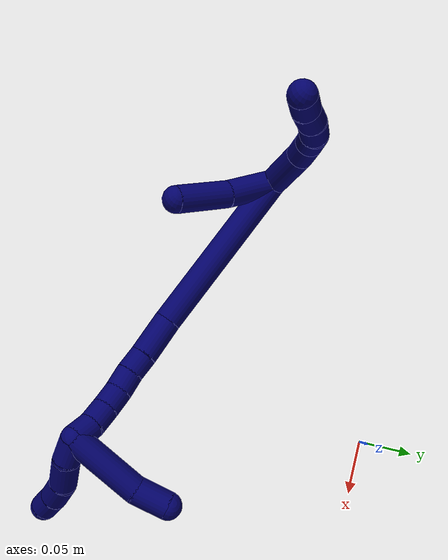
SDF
<sdf version="1.7">
 <world name="default">
  <model name="7">
   <static>0</static>
   <link name="7">
    <collision name="collision-cylinder-e_1_2_8">
     <pose>0.000186 0.000739 0.024261 -0.030449 0.007679 -0.000117</pose>
     <geometry><cylinder><radius>0.0125</radius><length>0.048547</length></cylinder></geometry>
     <surface>
      <friction><ode><mu>1.16</mu><mu2>1.16</mu2><slip1>0</slip1><slip2>0</slip2></ode></friction>
      <contact><ode><kp>1e+06</kp><kd>1</kd><max_vel>0</max_vel><min_depth>0.001</min_depth></ode></contact>
     </surface>
    </collision>
    <visual name="visual-cylinder-e_1_2_8">
     <pose>0.000186 0.000739 0.024261 -0.030449 0.007679 -0.000117</pose>
     <geometry><cylinder><radius>0.0125</radius><length>0.048547</length></cylinder></geometry>
     <material><ambient>0.003922 0 0.403922 1</ambient></material>
    </visual>
    <collision name="collision-cylinder-e_2_8_9">
     <pose>0.000959 0.000326 0.059064 0.10889 0.055213 0.00301</pose>
     <geometry><cylinder><radius>0.0125</radius><length>0.02124</length></cylinder></geometry>
     <surface>
      <friction><ode><mu>1.16</mu><mu2>1.16</mu2><slip1>0</slip1><slip2>0</slip2></ode></friction>
      <contact><ode><kp>1e+06</kp><kd>1</kd><max_vel>0</max_vel><min_depth>0.001</min_depth></ode></contact>
     </surface>
    </collision>
    <visual name="visual-cylinder-e_2_8_9">
     <pose>0.000959 0.000326 0.059064 0.10889 0.055213 0.00301</pose>
     <geometry><cylinder><radius>0.0125</radius><length>0.02124</length></cylinder></geometry>
     <material><ambient>0.003922 0 0.403922 1</ambient></material>
    </visual>
    <collision name="collision-cylinder-e_3_9_10">
     <pose>0.004624 -0.003501 0.078843 0.281808 0.309879 0.044302</pose>
     <geometry><cylinder><radius>0.0125</radius><length>0.020197</length></cylinder></geometry>
     <surface>
      <friction><ode><mu>1.16</mu><mu2>1.16</mu2><slip1>0</slip1><slip2>0</slip2></ode></friction>
      <contact><ode><kp>1e+06</kp><kd>1</kd><max_vel>0</max_vel><min_depth>0.001</min_depth></ode></contact>
     </surface>
    </collision>
    <visual name="visual-cylinder-e_3_9_10">
     <pose>0.004624 -0.003501 0.078843 0.281808 0.309879 0.044302</pose>
     <geometry><cylinder><radius>0.0125</radius><length>0.020197</length></cylinder></geometry>
     <material><ambient>0.003922 0 0.403922 1</ambient></material>
    </visual>
    <collision name="collision-cylinder-e_4_10_11">
     <pose>0.009449 -0.011802 0.096169 0.607816 0.175279 0.055099</pose>
     <geometry><cylinder><radius>0.0125</radius><length>0.020011</length></cylinder></geometry>
     <surface>
      <friction><ode><mu>1.16</mu><mu2>1.16</mu2><slip1>0</slip1><slip2>0</slip2></ode></friction>
      <contact><ode><kp>1e+06</kp><kd>1</kd><max_vel>0</max_vel><min_depth>0.001</min_depth></ode></contact>
     </surface>
    </collision>
    <visual name="visual-cylinder-e_4_10_11">
     <pose>0.009449 -0.011802 0.096169 0.607816 0.175279 0.055099</pose>
     <geometry><cylinder><radius>0.0125</radius><length>0.020011</length></cylinder></geometry>
     <material><ambient>0.003922 0 0.403922 1</ambient></material>
    </visual>
    <collision name="collision-cylinder-e_5_11_12">
     <pose>0.012944 -0.024328 0.111281 0.776402 0.17596 0.072114</pose>
     <geometry><cylinder><radius>0.0125</radius><length>0.020001</length></cylinder></geometry>
     <surface>
      <friction><ode><mu>1.16</mu><mu2>1.16</mu2><slip1>0</slip1><slip2>0</slip2></ode></friction>
      <contact><ode><kp>1e+06</kp><kd>1</kd><max_vel>0</max_vel><min_depth>0.001</min_depth></ode></contact>
     </surface>
    </collision>
    <visual name="visual-cylinder-e_5_11_12">
     <pose>0.012944 -0.024328 0.111281 0.776402 0.17596 0.072114</pose>
     <geometry><cylinder><radius>0.0125</radius><length>0.020001</length></cylinder></geometry>
     <material><ambient>0.003922 0 0.403922 1</ambient></material>
    </visual>
    <collision name="collision-cylinder-e_6_12_6">
     <pose>0.016273 -0.037184 0.126184 0.647387 0.158459 0.053261</pose>
     <geometry><cylinder><radius>0.0125</radius><length>0.020004</length></cylinder></geometry>
     <surface>
      <friction><ode><mu>1.16</mu><mu2>1.16</mu2><slip1>0</slip1><slip2>0</slip2></ode></friction>
      <contact><ode><kp>1e+06</kp><kd>1</kd><max_vel>0</max_vel><min_depth>0.001</min_depth></ode></contact>
     </surface>
    </collision>
    <visual name="visual-cylinder-e_6_12_6">
     <pose>0.016273 -0.037184 0.126184 0.647387 0.158459 0.053261</pose>
     <geometry><cylinder><radius>0.0125</radius><length>0.020004</length></cylinder></geometry>
     <material><ambient>0.003922 0 0.403922 1</ambient></material>
    </visual>
    <collision name="collision-cylinder-e_1_2_13">
     <pose>0.011993 -0.020414 -0.003411 1.73634 0.525185 0.614749</pose>
     <geometry><cylinder><radius>0.0125</radius><length>0.047842</length></cylinder></geometry>
     <surface>
      <friction><ode><mu>1.16</mu><mu2>1.16</mu2><slip1>0</slip1><slip2>0</slip2></ode></friction>
      <contact><ode><kp>1e+06</kp><kd>1</kd><max_vel>0</max_vel><min_depth>0.001</min_depth></ode></contact>
     </surface>
    </collision>
    <visual name="visual-cylinder-e_1_2_13">
     <pose>0.011993 -0.020414 -0.003411 1.73634 0.525185 0.614749</pose>
     <geometry><cylinder><radius>0.0125</radius><length>0.047842</length></cylinder></geometry>
     <material><ambient>0.003922 0 0.403922 1</ambient></material>
    </visual>
    <collision name="collision-cylinder-e_2_13_5">
     <pose>0.035394 -0.064272 -0.007427 1.59663 0.452747 0.46418</pose>
     <geometry><cylinder><radius>0.0125</radius><length>0.052158</length></cylinder></geometry>
     <surface>
      <friction><ode><mu>1.16</mu><mu2>1.16</mu2><slip1>0</slip1><slip2>0</slip2></ode></friction>
      <contact><ode><kp>1e+06</kp><kd>1</kd><max_vel>0</max_vel><min_depth>0.001</min_depth></ode></contact>
     </surface>
    </collision>
    <visual name="visual-cylinder-e_2_13_5">
     <pose>0.035394 -0.064272 -0.007427 1.59663 0.452747 0.46418</pose>
     <geometry><cylinder><radius>0.0125</radius><length>0.052158</length></cylinder></geometry>
     <material><ambient>0.003922 0 0.403922 1</ambient></material>
    </visual>
    <collision name="collision-cylinder-e_1_2_14">
     <pose>0.063431 -0.028384 -0.040607 2.53153 0.907708 1.99527</pose>
     <geometry><cylinder><radius>0.0125</radius><length>0.160974</length></cylinder></geometry>
     <surface>
      <friction><ode><mu>1.16</mu><mu2>1.16</mu2><slip1>0</slip1><slip2>0</slip2></ode></friction>
      <contact><ode><kp>1e+06</kp><kd>1</kd><max_vel>0</max_vel><min_depth>0.001</min_depth></ode></contact>
     </surface>
    </collision>
    <visual name="visual-cylinder-e_1_2_14">
     <pose>0.063431 -0.028384 -0.040607 2.53153 0.907708 1.99527</pose>
     <geometry><cylinder><radius>0.0125</radius><length>0.160974</length></cylinder></geometry>
     <material><ambient>0.003922 0 0.403922 1</ambient></material>
    </visual>
    <collision name="collision-cylinder-e_2_14_15">
     <pose>0.143877 -0.063845 -0.087376 2.28731 1.06684 1.82825</pose>
     <geometry><cylinder><radius>0.0125</radius><length>0.038861</length></cylinder></geometry>
     <surface>
      <friction><ode><mu>1.16</mu><mu2>1.16</mu2><slip1>0</slip1><slip2>0</slip2></ode></friction>
      <contact><ode><kp>1e+06</kp><kd>1</kd><max_vel>0</max_vel><min_depth>0.001</min_depth></ode></contact>
     </surface>
    </collision>
    <visual name="visual-cylinder-e_2_14_15">
     <pose>0.143877 -0.063845 -0.087376 2.28731 1.06684 1.82825</pose>
     <geometry><cylinder><radius>0.0125</radius><length>0.038861</length></cylinder></geometry>
     <material><ambient>0.003922 0 0.403922 1</ambient></material>
    </visual>
    <collision name="collision-cylinder-e_3_15_16">
     <pose>0.169411 -0.075047 -0.096811 2.2412 1.01705 1.71302</pose>
     <geometry><cylinder><radius>0.0125</radius><length>0.02003</length></cylinder></geometry>
     <surface>
      <friction><ode><mu>1.16</mu><mu2>1.16</mu2><slip1>0</slip1><slip2>0</slip2></ode></friction>
      <contact><ode><kp>1e+06</kp><kd>1</kd><max_vel>0</max_vel><min_depth>0.001</min_depth></ode></contact>
     </surface>
    </collision>
    <visual name="visual-cylinder-e_3_15_16">
     <pose>0.169411 -0.075047 -0.096811 2.2412 1.01705 1.71302</pose>
     <geometry><cylinder><radius>0.0125</radius><length>0.02003</length></cylinder></geometry>
     <material><ambient>0.003922 0 0.403922 1</ambient></material>
    </visual>
    <collision name="collision-cylinder-e_4_16_17">
     <pose>0.187135 -0.082538 -0.102279 2.14908 1.15924 1.75948</pose>
     <geometry><cylinder><radius>0.0125</radius><length>0.020088</length></cylinder></geometry>
     <surface>
      <friction><ode><mu>1.16</mu><mu2>1.16</mu2><slip1>0</slip1><slip2>0</slip2></ode></friction>
      <contact><ode><kp>1e+06</kp><kd>1</kd><max_vel>0</max_vel><min_depth>0.001</min_depth></ode></contact>
     </surface>
    </collision>
    <visual name="visual-cylinder-e_4_16_17">
     <pose>0.187135 -0.082538 -0.102279 2.14908 1.15924 1.75948</pose>
     <geometry><cylinder><radius>0.0125</radius><length>0.020088</length></cylinder></geometry>
     <material><ambient>0.003922 0 0.403922 1</ambient></material>
    </visual>
    <collision name="collision-cylinder-e_5_17_18">
     <pose>0.205333 -0.09023 -0.105309 1.76122 1.11517 1.29374</pose>
     <geometry><cylinder><radius>0.0125</radius><length>0.02003</length></cylinder></geometry>
     <surface>
      <friction><ode><mu>1.16</mu><mu2>1.16</mu2><slip1>0</slip1><slip2>0</slip2></ode></friction>
      <contact><ode><kp>1e+06</kp><kd>1</kd><max_vel>0</max_vel><min_depth>0.001</min_depth></ode></contact>
     </surface>
    </collision>
    <visual name="visual-cylinder-e_5_17_18">
     <pose>0.205333 -0.09023 -0.105309 1.76122 1.11517 1.29374</pose>
     <geometry><cylinder><radius>0.0125</radius><length>0.02003</length></cylinder></geometry>
     <material><ambient>0.003922 0 0.403922 1</ambient></material>
    </visual>
    <collision name="collision-cylinder-e_6_18_19">
     <pose>0.223165 -0.099246 -0.106226 1.58839 1.08305 1.09866</pose>
     <geometry><cylinder><radius>0.0125</radius><length>0.020011</length></cylinder></geometry>
     <surface>
      <friction><ode><mu>1.16</mu><mu2>1.16</mu2><slip1>0</slip1><slip2>0</slip2></ode></friction>
      <contact><ode><kp>1e+06</kp><kd>1</kd><max_vel>0</max_vel><min_depth>0.001</min_depth></ode></contact>
     </surface>
    </collision>
    <visual name="visual-cylinder-e_6_18_19">
     <pose>0.223165 -0.099246 -0.106226 1.58839 1.08305 1.09866</pose>
     <geometry><cylinder><radius>0.0125</radius><length>0.020011</length></cylinder></geometry>
     <material><ambient>0.003922 0 0.403922 1</ambient></material>
    </visual>
    <collision name="collision-cylinder-e_7_19_1">
     <pose>0.239661 -0.110349 -0.105771 1.48716 0.871676 0.809322</pose>
     <geometry><cylinder><radius>0.0125</radius><length>0.020006</length></cylinder></geometry>
     <surface>
      <friction><ode><mu>1.16</mu><mu2>1.16</mu2><slip1>0</slip1><slip2>0</slip2></ode></friction>
      <contact><ode><kp>1e+06</kp><kd>1</kd><max_vel>0</max_vel><min_depth>0.001</min_depth></ode></contact>
     </surface>
    </collision>
    <visual name="visual-cylinder-e_7_19_1">
     <pose>0.239661 -0.110349 -0.105771 1.48716 0.871676 0.809322</pose>
     <geometry><cylinder><radius>0.0125</radius><length>0.020006</length></cylinder></geometry>
     <material><ambient>0.003922 0 0.403922 1</ambient></material>
    </visual>
    <collision name="collision-cylinder-e_1_1_20">
     <pose>0.254674 -0.1165 -0.114906 -3.11437 0.650047 -3.06085</pose>
     <geometry><cylinder><radius>0.0125</radius><length>0.024312</length></cylinder></geometry>
     <surface>
      <friction><ode><mu>1.16</mu><mu2>1.16</mu2><slip1>0</slip1><slip2>0</slip2></ode></friction>
      <contact><ode><kp>1e+06</kp><kd>1</kd><max_vel>0</max_vel><min_depth>0.001</min_depth></ode></contact>
     </surface>
    </collision>
    <visual name="visual-cylinder-e_1_1_20">
     <pose>0.254674 -0.1165 -0.114906 -3.11437 0.650047 -3.06085</pose>
     <geometry><cylinder><radius>0.0125</radius><length>0.024312</length></cylinder></geometry>
     <material><ambient>0.003922 0 0.403922 1</ambient></material>
    </visual>
    <collision name="collision-cylinder-e_2_20_21">
     <pose>0.268914 -0.112991 -0.137767 -2.90028 0.469082 -2.20245</pose>
     <geometry><cylinder><radius>0.0125</radius><length>0.030452</length></cylinder></geometry>
     <surface>
      <friction><ode><mu>1.16</mu><mu2>1.16</mu2><slip1>0</slip1><slip2>0</slip2></ode></friction>
      <contact><ode><kp>1e+06</kp><kd>1</kd><max_vel>0</max_vel><min_depth>0.001</min_depth></ode></contact>
     </surface>
    </collision>
    <visual name="visual-cylinder-e_2_20_21">
     <pose>0.268914 -0.112991 -0.137767 -2.90028 0.469082 -2.20245</pose>
     <geometry><cylinder><radius>0.0125</radius><length>0.030452</length></cylinder></geometry>
     <material><ambient>0.003922 0 0.403922 1</ambient></material>
    </visual>
    <collision name="collision-cylinder-e_3_21_22">
     <pose>0.279764 -0.110192 -0.162632 3.10338 0.32724 2.91111</pose>
     <geometry><cylinder><radius>0.0125</radius><length>0.024682</length></cylinder></geometry>
     <surface>
      <friction><ode><mu>1.16</mu><mu2>1.16</mu2><slip1>0</slip1><slip2>0</slip2></ode></friction>
      <contact><ode><kp>1e+06</kp><kd>1</kd><max_vel>0</max_vel><min_depth>0.001</min_depth></ode></contact>
     </surface>
    </collision>
    <visual name="visual-cylinder-e_3_21_22">
     <pose>0.279764 -0.110192 -0.162632 3.10338 0.32724 2.91111</pose>
     <geometry><cylinder><radius>0.0125</radius><length>0.024682</length></cylinder></geometry>
     <material><ambient>0.003922 0 0.403922 1</ambient></material>
    </visual>
    <collision name="collision-cylinder-e_4_22_4">
     <pose>0.286703 -0.112262 -0.184013 2.97584 0.293419 2.11736</pose>
     <geometry><cylinder><radius>0.0125</radius><length>0.020554</length></cylinder></geometry>
     <surface>
      <friction><ode><mu>1.16</mu><mu2>1.16</mu2><slip1>0</slip1><slip2>0</slip2></ode></friction>
      <contact><ode><kp>1e+06</kp><kd>1</kd><max_vel>0</max_vel><min_depth>0.001</min_depth></ode></contact>
     </surface>
    </collision>
    <visual name="visual-cylinder-e_4_22_4">
     <pose>0.286703 -0.112262 -0.184013 2.97584 0.293419 2.11736</pose>
     <geometry><cylinder><radius>0.0125</radius><length>0.020554</length></cylinder></geometry>
     <material><ambient>0.003922 0 0.403922 1</ambient></material>
    </visual>
    <collision name="collision-cylinder-e_1_1_23">
     <pose>0.263703 -0.08656 -0.105292 -1.57276 0.497079 -0.498018</pose>
     <geometry><cylinder><radius>0.0125</radius><length>0.068725</length></cylinder></geometry>
     <surface>
      <friction><ode><mu>1.16</mu><mu2>1.16</mu2><slip1>0</slip1><slip2>0</slip2></ode></friction>
      <contact><ode><kp>1e+06</kp><kd>1</kd><max_vel>0</max_vel><min_depth>0.001</min_depth></ode></contact>
     </surface>
    </collision>
    <visual name="visual-cylinder-e_1_1_23">
     <pose>0.263703 -0.08656 -0.105292 -1.57276 0.497079 -0.498018</pose>
     <geometry><cylinder><radius>0.0125</radius><length>0.068725</length></cylinder></geometry>
     <material><ambient>0.003922 0 0.403922 1</ambient></material>
    </visual>
    <collision name="collision-cylinder-e_2_23_3">
     <pose>0.284923 -0.04179 -0.102351 -1.36762 0.314246 -0.256812</pose>
     <geometry><cylinder><radius>0.0125</radius><length>0.031275</length></cylinder></geometry>
     <surface>
      <friction><ode><mu>1.16</mu><mu2>1.16</mu2><slip1>0</slip1><slip2>0</slip2></ode></friction>
      <contact><ode><kp>1e+06</kp><kd>1</kd><max_vel>0</max_vel><min_depth>0.001</min_depth></ode></contact>
     </surface>
    </collision>
    <visual name="visual-cylinder-e_2_23_3">
     <pose>0.284923 -0.04179 -0.102351 -1.36762 0.314246 -0.256812</pose>
     <geometry><cylinder><radius>0.0125</radius><length>0.031275</length></cylinder></geometry>
     <material><ambient>0.003922 0 0.403922 1</ambient></material>
    </visual>
    <collision name="collision-sphere-3">
     <pose>0.289756 -0.027224 -0.09935 0 -0 0</pose>
     <geometry><sphere><radius>0.0125</radius></sphere></geometry>
     <surface>
      <friction><ode><mu>1.16</mu><mu2>1.16</mu2><slip1>0</slip1><slip2>0</slip2></ode></friction>
      <contact><ode><kp>1e+06</kp><kd>1</kd><max_vel>0</max_vel><min_depth>0.001</min_depth></ode></contact>
     </surface>
    </collision>
    <visual name="visual-sphere-3">
     <pose>0.289756 -0.027224 -0.09935 0 -0 0</pose>
     <geometry><sphere><radius>0.0125</radius></sphere></geometry>
     <material><ambient>0.003922 0 0.403922 1</ambient></material>
    </visual>
    <collision name="collision-sphere-23">
     <pose>0.280089 -0.056355 -0.105352 0 -0 0</pose>
     <geometry><sphere><radius>0.0125</radius></sphere></geometry>
     <surface>
      <friction><ode><mu>1.16</mu><mu2>1.16</mu2><slip1>0</slip1><slip2>0</slip2></ode></friction>
      <contact><ode><kp>1e+06</kp><kd>1</kd><max_vel>0</max_vel><min_depth>0.001</min_depth></ode></contact>
     </surface>
    </collision>
    <visual name="visual-sphere-23">
     <pose>0.280089 -0.056355 -0.105352 0 -0 0</pose>
     <geometry><sphere><radius>0.0125</radius></sphere></geometry>
     <material><ambient>0.003922 0 0.403922 1</ambient></material>
    </visual>
    <collision name="collision-sphere-4">
     <pose>0.289676 -0.113885 -0.193716 0 -0 0</pose>
     <geometry><sphere><radius>0.0125</radius></sphere></geometry>
     <surface>
      <friction><ode><mu>1.16</mu><mu2>1.16</mu2><slip1>0</slip1><slip2>0</slip2></ode></friction>
      <contact><ode><kp>1e+06</kp><kd>1</kd><max_vel>0</max_vel><min_depth>0.001</min_depth></ode></contact>
     </surface>
    </collision>
    <visual name="visual-sphere-4">
     <pose>0.289676 -0.113885 -0.193716 0 -0 0</pose>
     <geometry><sphere><radius>0.0125</radius></sphere></geometry>
     <material><ambient>0.003922 0 0.403922 1</ambient></material>
    </visual>
    <collision name="collision-sphere-22">
     <pose>0.283731 -0.110639 -0.17431 0 -0 0</pose>
     <geometry><sphere><radius>0.0125</radius></sphere></geometry>
     <surface>
      <friction><ode><mu>1.16</mu><mu2>1.16</mu2><slip1>0</slip1><slip2>0</slip2></ode></friction>
      <contact><ode><kp>1e+06</kp><kd>1</kd><max_vel>0</max_vel><min_depth>0.001</min_depth></ode></contact>
     </surface>
    </collision>
    <visual name="visual-sphere-22">
     <pose>0.283731 -0.110639 -0.17431 0 -0 0</pose>
     <geometry><sphere><radius>0.0125</radius></sphere></geometry>
     <material><ambient>0.003922 0 0.403922 1</ambient></material>
    </visual>
    <collision name="collision-sphere-21">
     <pose>0.275797 -0.109746 -0.150955 0 -0 0</pose>
     <geometry><sphere><radius>0.0125</radius></sphere></geometry>
     <surface>
      <friction><ode><mu>1.16</mu><mu2>1.16</mu2><slip1>0</slip1><slip2>0</slip2></ode></friction>
      <contact><ode><kp>1e+06</kp><kd>1</kd><max_vel>0</max_vel><min_depth>0.001</min_depth></ode></contact>
     </surface>
    </collision>
    <visual name="visual-sphere-21">
     <pose>0.275797 -0.109746 -0.150955 0 -0 0</pose>
     <geometry><sphere><radius>0.0125</radius></sphere></geometry>
     <material><ambient>0.003922 0 0.403922 1</ambient></material>
    </visual>
    <collision name="collision-sphere-20">
     <pose>0.262031 -0.116237 -0.124579 0 -0 0</pose>
     <geometry><sphere><radius>0.0125</radius></sphere></geometry>
     <surface>
      <friction><ode><mu>1.16</mu><mu2>1.16</mu2><slip1>0</slip1><slip2>0</slip2></ode></friction>
      <contact><ode><kp>1e+06</kp><kd>1</kd><max_vel>0</max_vel><min_depth>0.001</min_depth></ode></contact>
     </surface>
    </collision>
    <visual name="visual-sphere-20">
     <pose>0.262031 -0.116237 -0.124579 0 -0 0</pose>
     <geometry><sphere><radius>0.0125</radius></sphere></geometry>
     <material><ambient>0.003922 0 0.403922 1</ambient></material>
    </visual>
    <collision name="collision-sphere-12">
     <pose>0.014695 -0.031228 0.118306 0 -0 0</pose>
     <geometry><sphere><radius>0.0125</radius></sphere></geometry>
     <surface>
      <friction><ode><mu>1.16</mu><mu2>1.16</mu2><slip1>0</slip1><slip2>0</slip2></ode></friction>
      <contact><ode><kp>1e+06</kp><kd>1</kd><max_vel>0</max_vel><min_depth>0.001</min_depth></ode></contact>
     </surface>
    </collision>
    <visual name="visual-sphere-12">
     <pose>0.014695 -0.031228 0.118306 0 -0 0</pose>
     <geometry><sphere><radius>0.0125</radius></sphere></geometry>
     <material><ambient>0.003922 0 0.403922 1</ambient></material>
    </visual>
    <collision name="collision-sphere-11">
     <pose>0.011193 -0.017429 0.104256 0 -0 0</pose>
     <geometry><sphere><radius>0.0125</radius></sphere></geometry>
     <surface>
      <friction><ode><mu>1.16</mu><mu2>1.16</mu2><slip1>0</slip1><slip2>0</slip2></ode></friction>
      <contact><ode><kp>1e+06</kp><kd>1</kd><max_vel>0</max_vel><min_depth>0.001</min_depth></ode></contact>
     </surface>
    </collision>
    <visual name="visual-sphere-11">
     <pose>0.011193 -0.017429 0.104256 0 -0 0</pose>
     <geometry><sphere><radius>0.0125</radius></sphere></geometry>
     <material><ambient>0.003922 0 0.403922 1</ambient></material>
    </visual>
    <collision name="collision-sphere-10">
     <pose>0.007704 -0.006176 0.088081 0 -0 0</pose>
     <geometry><sphere><radius>0.0125</radius></sphere></geometry>
     <surface>
      <friction><ode><mu>1.16</mu><mu2>1.16</mu2><slip1>0</slip1><slip2>0</slip2></ode></friction>
      <contact><ode><kp>1e+06</kp><kd>1</kd><max_vel>0</max_vel><min_depth>0.001</min_depth></ode></contact>
     </surface>
    </collision>
    <visual name="visual-sphere-10">
     <pose>0.007704 -0.006176 0.088081 0 -0 0</pose>
     <geometry><sphere><radius>0.0125</radius></sphere></geometry>
     <material><ambient>0.003922 0 0.403922 1</ambient></material>
    </visual>
    <collision name="collision-sphere-9">
     <pose>0.001545 -0.000827 0.069605 0 -0 0</pose>
     <geometry><sphere><radius>0.0125</radius></sphere></geometry>
     <surface>
      <friction><ode><mu>1.16</mu><mu2>1.16</mu2><slip1>0</slip1><slip2>0</slip2></ode></friction>
      <contact><ode><kp>1e+06</kp><kd>1</kd><max_vel>0</max_vel><min_depth>0.001</min_depth></ode></contact>
     </surface>
    </collision>
    <visual name="visual-sphere-9">
     <pose>0.001545 -0.000827 0.069605 0 -0 0</pose>
     <geometry><sphere><radius>0.0125</radius></sphere></geometry>
     <material><ambient>0.003922 0 0.403922 1</ambient></material>
    </visual>
    <collision name="collision-sphere-2">
     <geometry><sphere><radius>0.0125</radius></sphere></geometry>
     <surface>
      <friction><ode><mu>1.16</mu><mu2>1.16</mu2><slip1>0</slip1><slip2>0</slip2></ode></friction>
      <contact><ode><kp>1e+06</kp><kd>1</kd><max_vel>0</max_vel><min_depth>0.001</min_depth></ode></contact>
     </surface>
    </collision>
    <visual name="visual-sphere-2">
     <geometry><sphere><radius>0.0125</radius></sphere></geometry>
     <material><ambient>0.003922 0 0.403922 1</ambient></material>
    </visual>
    <collision name="collision-sphere-19">
     <pose>0.232004 -0.103934 -0.106308 0 -0 0</pose>
     <geometry><sphere><radius>0.0125</radius></sphere></geometry>
     <surface>
      <friction><ode><mu>1.16</mu><mu2>1.16</mu2><slip1>0</slip1><slip2>0</slip2></ode></friction>
      <contact><ode><kp>1e+06</kp><kd>1</kd><max_vel>0</max_vel><min_depth>0.001</min_depth></ode></contact>
     </surface>
    </collision>
    <visual name="visual-sphere-19">
     <pose>0.232004 -0.103934 -0.106308 0 -0 0</pose>
     <geometry><sphere><radius>0.0125</radius></sphere></geometry>
     <material><ambient>0.003922 0 0.403922 1</ambient></material>
    </visual>
    <collision name="collision-sphere-8">
     <pose>0.000373 0.001478 0.048523 0 -0 0</pose>
     <geometry><sphere><radius>0.0125</radius></sphere></geometry>
     <surface>
      <friction><ode><mu>1.16</mu><mu2>1.16</mu2><slip1>0</slip1><slip2>0</slip2></ode></friction>
      <contact><ode><kp>1e+06</kp><kd>1</kd><max_vel>0</max_vel><min_depth>0.001</min_depth></ode></contact>
     </surface>
    </collision>
    <visual name="visual-sphere-8">
     <pose>0.000373 0.001478 0.048523 0 -0 0</pose>
     <geometry><sphere><radius>0.0125</radius></sphere></geometry>
     <material><ambient>0.003922 0 0.403922 1</ambient></material>
    </visual>
    <collision name="collision-sphere-6">
     <pose>0.017851 -0.043141 0.134062 0 -0 0</pose>
     <geometry><sphere><radius>0.0125</radius></sphere></geometry>
     <surface>
      <friction><ode><mu>1.16</mu><mu2>1.16</mu2><slip1>0</slip1><slip2>0</slip2></ode></friction>
      <contact><ode><kp>1e+06</kp><kd>1</kd><max_vel>0</max_vel><min_depth>0.001</min_depth></ode></contact>
     </surface>
    </collision>
    <visual name="visual-sphere-6">
     <pose>0.017851 -0.043141 0.134062 0 -0 0</pose>
     <geometry><sphere><radius>0.0125</radius></sphere></geometry>
     <material><ambient>0.003922 0 0.403922 1</ambient></material>
    </visual>
    <collision name="collision-sphere-13">
     <pose>0.023986 -0.040828 -0.006821 0 -0 0</pose>
     <geometry><sphere><radius>0.0125</radius></sphere></geometry>
     <surface>
      <friction><ode><mu>1.16</mu><mu2>1.16</mu2><slip1>0</slip1><slip2>0</slip2></ode></friction>
      <contact><ode><kp>1e+06</kp><kd>1</kd><max_vel>0</max_vel><min_depth>0.001</min_depth></ode></contact>
     </surface>
    </collision>
    <visual name="visual-sphere-13">
     <pose>0.023986 -0.040828 -0.006821 0 -0 0</pose>
     <geometry><sphere><radius>0.0125</radius></sphere></geometry>
     <material><ambient>0.003922 0 0.403922 1</ambient></material>
    </visual>
    <collision name="collision-sphere-5">
     <pose>0.046803 -0.087716 -0.008033 0 -0 0</pose>
     <geometry><sphere><radius>0.0125</radius></sphere></geometry>
     <surface>
      <friction><ode><mu>1.16</mu><mu2>1.16</mu2><slip1>0</slip1><slip2>0</slip2></ode></friction>
      <contact><ode><kp>1e+06</kp><kd>1</kd><max_vel>0</max_vel><min_depth>0.001</min_depth></ode></contact>
     </surface>
    </collision>
    <visual name="visual-sphere-5">
     <pose>0.046803 -0.087716 -0.008033 0 -0 0</pose>
     <geometry><sphere><radius>0.0125</radius></sphere></geometry>
     <material><ambient>0.003922 0 0.403922 1</ambient></material>
    </visual>
    <collision name="collision-sphere-14">
     <pose>0.126863 -0.056769 -0.081214 0 -0 0</pose>
     <geometry><sphere><radius>0.0125</radius></sphere></geometry>
     <surface>
      <friction><ode><mu>1.16</mu><mu2>1.16</mu2><slip1>0</slip1><slip2>0</slip2></ode></friction>
      <contact><ode><kp>1e+06</kp><kd>1</kd><max_vel>0</max_vel><min_depth>0.001</min_depth></ode></contact>
     </surface>
    </collision>
    <visual name="visual-sphere-14">
     <pose>0.126863 -0.056769 -0.081214 0 -0 0</pose>
     <geometry><sphere><radius>0.0125</radius></sphere></geometry>
     <material><ambient>0.003922 0 0.403922 1</ambient></material>
    </visual>
    <collision name="collision-sphere-15">
     <pose>0.160892 -0.07092 -0.093538 0 -0 0</pose>
     <geometry><sphere><radius>0.0125</radius></sphere></geometry>
     <surface>
      <friction><ode><mu>1.16</mu><mu2>1.16</mu2><slip1>0</slip1><slip2>0</slip2></ode></friction>
      <contact><ode><kp>1e+06</kp><kd>1</kd><max_vel>0</max_vel><min_depth>0.001</min_depth></ode></contact>
     </surface>
    </collision>
    <visual name="visual-sphere-15">
     <pose>0.160892 -0.07092 -0.093538 0 -0 0</pose>
     <geometry><sphere><radius>0.0125</radius></sphere></geometry>
     <material><ambient>0.003922 0 0.403922 1</ambient></material>
    </visual>
    <collision name="collision-sphere-16">
     <pose>0.177929 -0.079174 -0.100083 0 -0 0</pose>
     <geometry><sphere><radius>0.0125</radius></sphere></geometry>
     <surface>
      <friction><ode><mu>1.16</mu><mu2>1.16</mu2><slip1>0</slip1><slip2>0</slip2></ode></friction>
      <contact><ode><kp>1e+06</kp><kd>1</kd><max_vel>0</max_vel><min_depth>0.001</min_depth></ode></contact>
     </surface>
    </collision>
    <visual name="visual-sphere-16">
     <pose>0.177929 -0.079174 -0.100083 0 -0 0</pose>
     <geometry><sphere><radius>0.0125</radius></sphere></geometry>
     <material><ambient>0.003922 0 0.403922 1</ambient></material>
    </visual>
    <collision name="collision-sphere-17">
     <pose>0.19634 -0.085903 -0.104475 0 -0 0</pose>
     <geometry><sphere><radius>0.0125</radius></sphere></geometry>
     <surface>
      <friction><ode><mu>1.16</mu><mu2>1.16</mu2><slip1>0</slip1><slip2>0</slip2></ode></friction>
      <contact><ode><kp>1e+06</kp><kd>1</kd><max_vel>0</max_vel><min_depth>0.001</min_depth></ode></contact>
     </surface>
    </collision>
    <visual name="visual-sphere-17">
     <pose>0.19634 -0.085903 -0.104475 0 -0 0</pose>
     <geometry><sphere><radius>0.0125</radius></sphere></geometry>
     <material><ambient>0.003922 0 0.403922 1</ambient></material>
    </visual>
    <collision name="collision-sphere-18">
     <pose>0.214327 -0.094557 -0.106143 0 -0 0</pose>
     <geometry><sphere><radius>0.0125</radius></sphere></geometry>
     <surface>
      <friction><ode><mu>1.16</mu><mu2>1.16</mu2><slip1>0</slip1><slip2>0</slip2></ode></friction>
      <contact><ode><kp>1e+06</kp><kd>1</kd><max_vel>0</max_vel><min_depth>0.001</min_depth></ode></contact>
     </surface>
    </collision>
    <visual name="visual-sphere-18">
     <pose>0.214327 -0.094557 -0.106143 0 -0 0</pose>
     <geometry><sphere><radius>0.0125</radius></sphere></geometry>
     <material><ambient>0.003922 0 0.403922 1</ambient></material>
    </visual>
    <collision name="collision-sphere-1">
     <pose>0.247317 -0.116764 -0.105233 0 -0 0</pose>
     <geometry><sphere><radius>0.0125</radius></sphere></geometry>
     <surface>
      <friction><ode><mu>1.16</mu><mu2>1.16</mu2><slip1>0</slip1><slip2>0</slip2></ode></friction>
      <contact><ode><kp>1e+06</kp><kd>1</kd><max_vel>0</max_vel><min_depth>0.001</min_depth></ode></contact>
     </surface>
    </collision>
    <visual name="visual-sphere-1">
     <pose>0.247317 -0.116764 -0.105233 0 -0 0</pose>
     <geometry><sphere><radius>0.0125</radius></sphere></geometry>
     <material><ambient>0.003922 0 0.403922 1</ambient></material>
    </visual>
    <inertial>
     <pose>0.125142 -0.054123 -0.047135 0 -0 0</pose>
     <mass>0.75</mass>
     <inertia>
      <ixx>0.000201</ixx>
      <ixy>0</ixy>
      <ixz>0</ixz>
      <iyy>0.000503</iyy>
      <iyz>0</iyz>
      <izz>-0.000203</izz>
     </inertia>
    </inertial>
   </link>
   <pose>-0.214587 -0.13812 0.045923 -0.399825 -0.354982 0.134413</pose>
  </model>
 </world>
</sdf>
